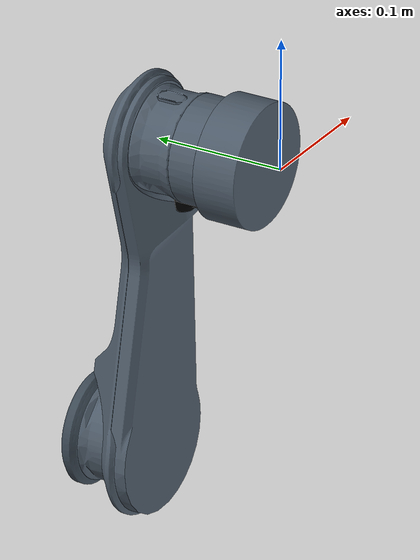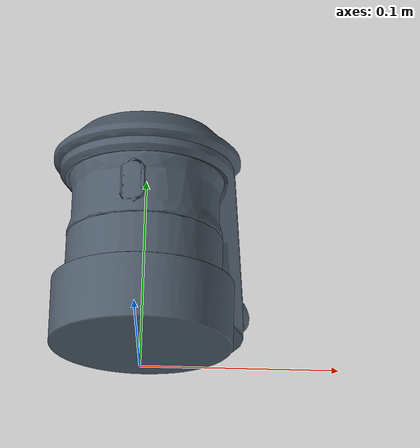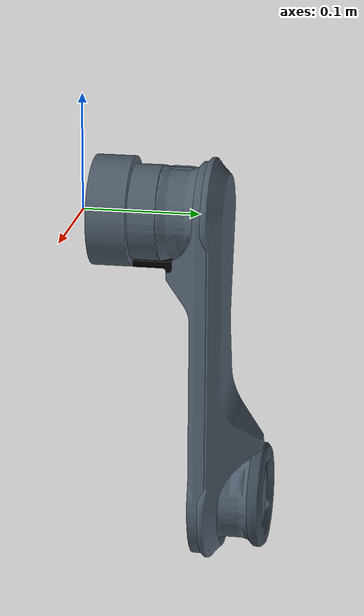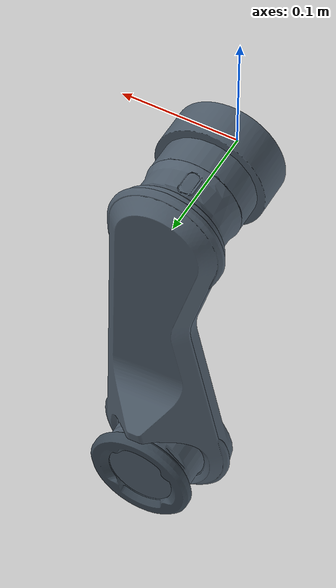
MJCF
<mujoco model="hl_hipy">
  <default>
    <default class="visual">
      <geom group="2" type="mesh" contype="0" conaffinity="0"/>
    </default>
    <default class="collision">
      <geom group="3" type="mesh"/>
    </default>
  </default>
  <asset>
    <material name="Material-7011塑胶" specular="0.5" shininess="0.25" rgba="0.309804 0.364706 0.419608 1.000000"/>
    <material name="Material-7011油漆" specular="0.5" shininess="0.25" rgba="0.309804 0.364706 0.419608 1.000000"/>
    <material name="Material-7011油漆.001" specular="0.5" shininess="0.25" rgba="0.309804 0.364706 0.419608 1.000000"/>
    <material name="Material-7011油漆.002" specular="0.5" shininess="0.25" rgba="0.309804 0.364706 0.419608 1.000000"/>
    <material name="Material-7011油漆.003" specular="0.5" shininess="0.25" rgba="0.309804 0.364706 0.419608 1.000000"/>
    <material name="Material-7011油漆.004" specular="0.5" shininess="0.25" rgba="0.309804 0.364706 0.419608 1.000000"/>
    <material name="Material-7011油漆.005" specular="0.5" shininess="0.25" rgba="0.309804 0.364706 0.419608 1.000000"/>
    <material name="Material-7011油漆.006" specular="0.5" shininess="0.25" rgba="0.309804 0.364706 0.419608 1.000000"/>
    <material name="Material-7024塑胶" specular="0.5" shininess="0.25" rgba="0.239216 0.290196 0.337255 1.000000"/>
    <material name="Material-塑胶" specular="0.5" shininess="0.25" rgba="0.000000 0.000000 0.000000 1.000000"/>
    <mesh file="hl_hipy_0.obj"/>
    <mesh file="hl_hipy_1.obj"/>
    <mesh file="hl_hipy_2.obj"/>
    <mesh file="hl_hipy_3.obj"/>
    <mesh file="hl_hipy_4.obj"/>
    <mesh file="hl_hipy_5.obj"/>
    <mesh file="hl_hipy_6.obj"/>
    <mesh file="hl_hipy_7.obj"/>
    <mesh file="hl_hipy_8.obj"/>
    <mesh file="hl_hipy_9.obj"/>
  </asset>
  <worldbody>
    <body name="hl_hipy">
      <geom mesh="hl_hipy_0" material="Material-7011油漆.006" class="visual"/>
      <geom mesh="hl_hipy_1" material="Material-塑胶" class="visual"/>
      <geom mesh="hl_hipy_2" material="Material-7011油漆.005" class="visual"/>
      <geom mesh="hl_hipy_3" material="Material-7011油漆.004" class="visual"/>
      <geom mesh="hl_hipy_4" material="Material-7011油漆.003" class="visual"/>
      <geom mesh="hl_hipy_5" material="Material-7024塑胶" class="visual"/>
      <geom mesh="hl_hipy_6" material="Material-7011油漆.002" class="visual"/>
      <geom mesh="hl_hipy_7" material="Material-7011油漆.001" class="visual"/>
      <geom mesh="hl_hipy_8" material="Material-7011塑胶" class="visual"/>
      <geom mesh="hl_hipy_9" material="Material-7011油漆" class="visual"/>
      <geom mesh="hl_hipy_0" class="collision"/>
      <geom mesh="hl_hipy_1" class="collision"/>
      <geom mesh="hl_hipy_2" class="collision"/>
      <geom mesh="hl_hipy_3" class="collision"/>
      <geom mesh="hl_hipy_4" class="collision"/>
      <geom mesh="hl_hipy_5" class="collision"/>
      <geom mesh="hl_hipy_6" class="collision"/>
      <geom mesh="hl_hipy_7" class="collision"/>
      <geom mesh="hl_hipy_8" class="collision"/>
      <geom mesh="hl_hipy_9" class="collision"/>
    </body>
  </worldbody>
</mujoco>
